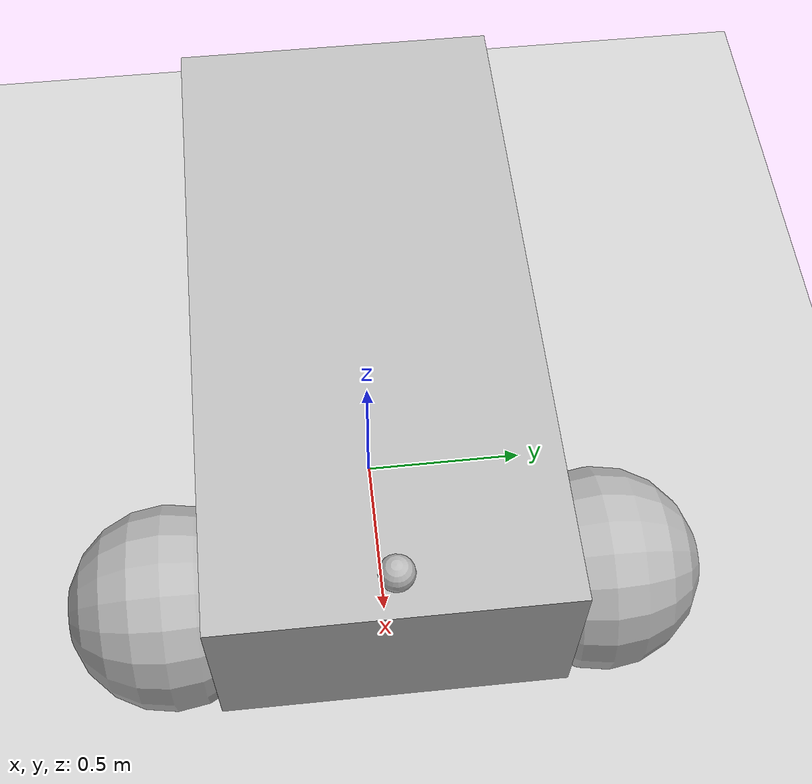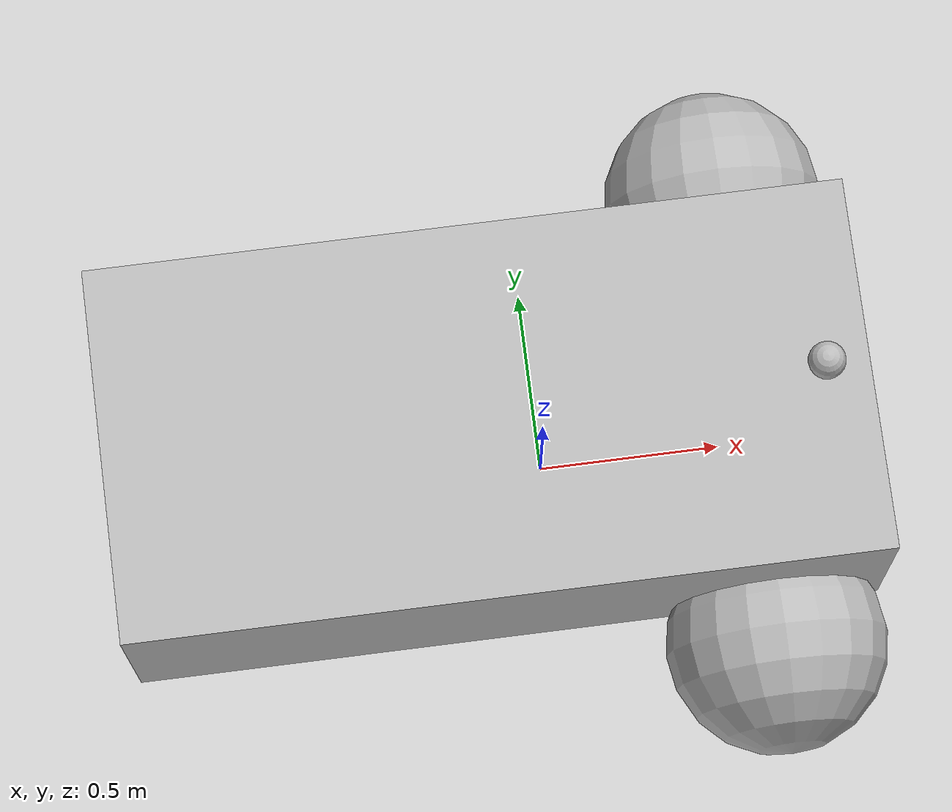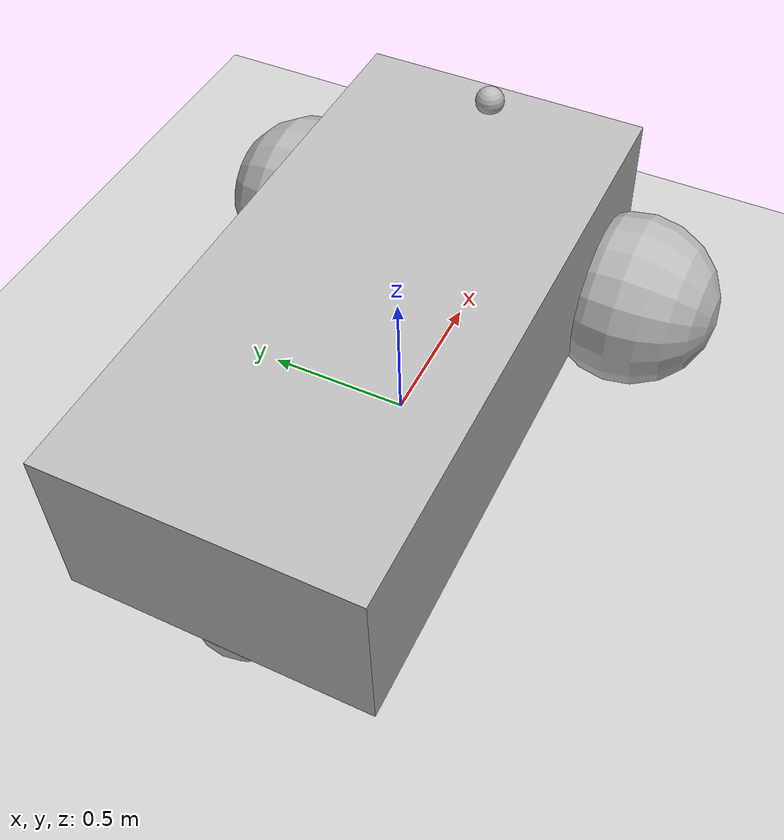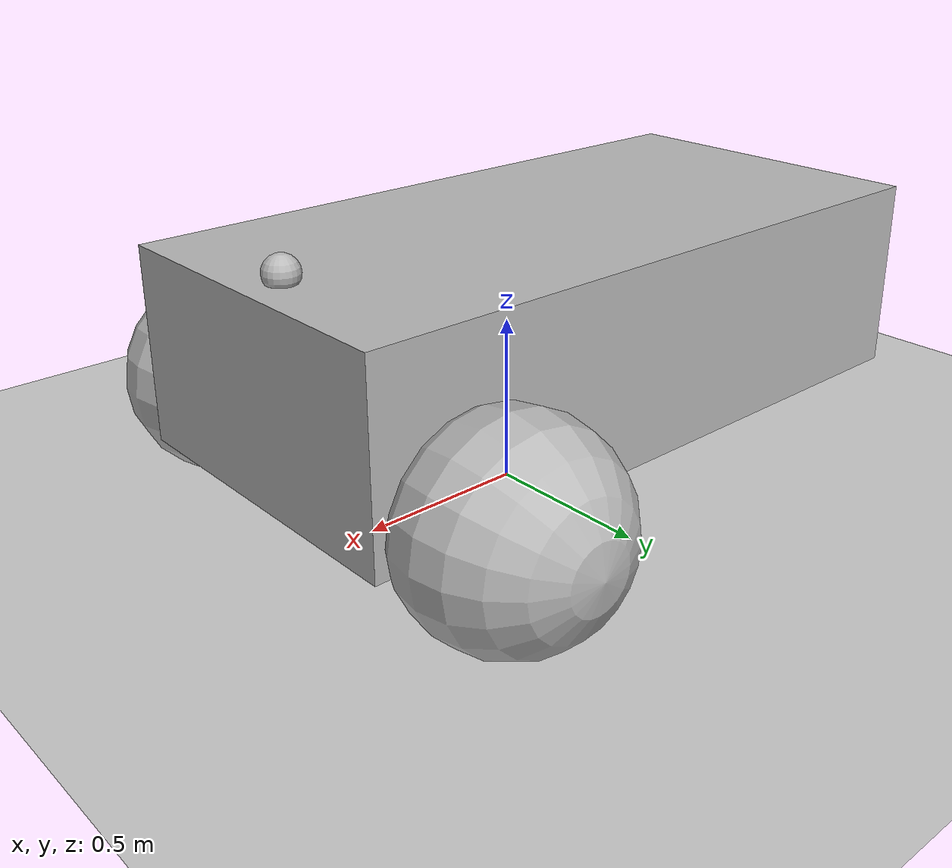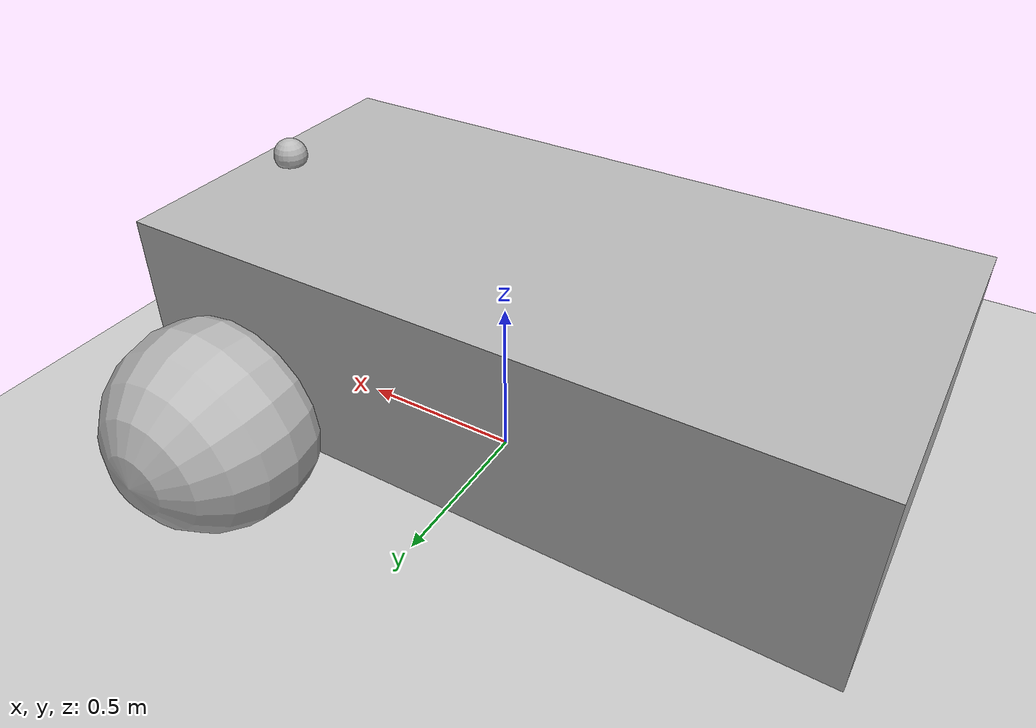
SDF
<?xml version='1.0'?>
    <sdf version='1.4'>
    <world name="default">

    <include>
      <uri>model://ground_plane</uri>
    </include>

    <include>
      <uri>model://sun</uri>
    </include>

    <include>
     	<uri>model://Ray_Model</uri>
     <pose>0.74 0.01 0.809 0 0 0</pose>
    </include>

    <joint name ="ray_sensor" type= "fixed">
      <parent>chassis</parent>
      <child>ray_link::link</child>
    </joint>

    <model name='vehicle'>
      <pose>0 0 0.325 0 -0 0</pose>

      <link name='chassis'>
        <pose>-0.151427 -0 0.175 0 -0 0</pose>
        <inertial>
          <mass>1.14395</mass>
          <inertia>
            <ixx>0.126164</ixx>
            <ixy>0</ixy>
            <ixz>0</ixz>
            <iyy>0.416519</iyy>
            <iyz>0</iyz>
            <izz>0.481014</izz>
          </inertia>
        </inertial>
        <visual name='visual'>
          <geometry>
            <box>
              <size>2.01142 1 0.568726</size>
            </box>
          </geometry>
        </visual>
        <collision name='collision'>
          <geometry>
            <box>
              <size>2.01142 1 0.568726</size>
            </box>
          </geometry>
        </collision>
      </link>

      <link name='left_wheel'>
        <pose>0.554283 0.625029 -0.025 -1.5707 0 0</pose>
        <inertial>
          <mass>2</mass>
          <inertia>
            <ixx>0.145833</ixx>
            <ixy>0</ixy>
            <ixz>0</ixz>
            <iyy>0.145833</iyy>
            <iyz>0</iyz>
            <izz>0.125</izz>
          </inertia>
        </inertial>
        <visual name='visual'>
          <geometry>
            <sphere>
              <radius>0.3</radius>
            </sphere>
          </geometry>
        </visual>
        <collision name='collision'>
          <geometry>
            <sphere>
              <radius>0.3</radius>
            </sphere>
          </geometry>
          <surface>
            <friction>
              <ode>
                <mu>1</mu>
                <mu2>1</mu2>
                <slip1>0</slip1>
                <slip2>0</slip2>
              </ode>
            </friction>
            <contact>
              <ode>
                <soft_cfm>0</soft_cfm>
                <soft_erp>0.2</soft_erp>
                <kp>1e+13</kp>
                <kd>1</kd>
                <max_vel>0.01</max_vel>
                <min_depth>0.01</min_depth>
              </ode>
            </contact>
          </surface>
        </collision>
      </link>

      <link name='right_wheel'>
        <pose>0.554282 -0.625029 -0.025 -1.5707 0 0</pose>
        <inertial>
          <mass>2</mass>
          <inertia>
            <ixx>0.145833</ixx>
            <ixy>0</ixy>
            <ixz>0</ixz>
            <iyy>0.145833</iyy>
            <iyz>0</iyz>
            <izz>0.125</izz>
          </inertia>
        </inertial>
        <visual name='visual'>
          <geometry>
            <sphere>
              <radius>0.3</radius>
            </sphere>
          </geometry>
        </visual>
        <collision name='collision'>
          <geometry>
            <sphere>
              <radius>0.3</radius>
            </sphere>
          </geometry>
          <surface>
            <friction>
              <ode>
                <mu>1</mu>
                <mu2>1</mu2>
                <slip1>0</slip1>
                <slip2>0</slip2>
              </ode>
            </friction>
            <contact>
              <ode>
                <soft_cfm>0</soft_cfm>
                <soft_erp>0.2</soft_erp>
                <kp>1e+13</kp>
                <kd>1</kd>
                <max_vel>0.01</max_vel>
                <min_depth>0.01</min_depth>
              </ode>
            </contact>
          </surface>
        </collision>
      </link>

      <link name='caster'>
        <pose>-0.957138 -0 -0.125 0 -0 0</pose>
        <inertial>
          <mass>1</mass>
          <inertia>
            <ixx>0.1</ixx>
            <ixy>0</ixy>
            <ixz>0</ixz>
            <iyy>0.1</iyy>
            <iyz>0</iyz>
            <izz>0.1</izz>
          </inertia>
        </inertial>
        <visual name='visual'>
          <geometry>
            <sphere>
              <radius>0.2</radius>
            </sphere>
          </geometry>
        </visual>
        <collision name='collision'>
          <geometry>
            <sphere>
              <radius>0.2</radius>
            </sphere>
          </geometry>
        </collision>
      </link>

      <joint name='left_wheel_hinge' type='revolute'>
        <parent>chassis</parent>
        <child>left_wheel</child>
        <axis>
          <xyz>0 1 0</xyz>
          <limit>
            <lower>-1.79769e+308</lower>
            <upper>1.79769e+308</upper>
          </limit>
        </axis>
      </joint>

      <joint name='right_wheel_hinge' type='revolute'>
        <parent>chassis</parent>
        <child>right_wheel</child>
        <axis>
          <xyz>0 1 0</xyz>
          <limit>
            <lower>-1.79769e+308</lower>
            <upper>1.79769e+308</upper>
          </limit>
        </axis>
      </joint>

      <joint name='caster_wheel' type='ball'>
        <parent>chassis</parent>
        <child>caster</child>
      </joint>

          <plugin name="pc2" filename="libgazebo_ros_ray_sensor.so">
            <ros>
              <namespace>/ray</namespace>
              <remapping>~/out:=pointcloud2</remapping>
            </ros>
            <output_type>sensor_msgs/PointCloud2</output_type>
          </plugin>
          <plugin name="pc" filename="libgazebo_ros_ray_sensor.so">
            <ros>
              <namespace>/ray</namespace>
              <remapping>~/out:=pointcloud</remapping>
            </ros>
            <output_type>sensor_msgs/PointCloud</output_type>
          </plugin>
          <plugin name="ls" filename="libgazebo_ros_ray_sensor.so">
            <ros>
              <namespace>/ray</namespace>
              <remapping>~/out:=laserscan</remapping>
            </ros>
            <output_type>sensor_msgs/LaserScan</output_type>
          </plugin>
          <plugin name="range" filename="libgazebo_ros_ray_sensor.so">
            <ros>
              <namespace>/ray</namespace>
              <remapping>~/out:=range</remapping>
            </ros>
            <output_type>sensor_msgs/Range</output_type>
          </plugin>

      <plugin name='diff_drive' filename='libgazebo_ros_diff_drive.so'>

<!-- isimleri degistirme, kodu yzarken buradan yapiyorduk -->
        <ros>
          <namespace>/demo</namespace>
          <remapping>cmd_vel:=cmd_demo</remapping>
          <remapping>odom:=odom_demo</remapping>
        </ros>

        <!-- wheels -->
        <left_joint>left_wheel_hinge</left_joint>
        <right_joint>right_wheel_hinge</right_joint>

        <!-- kinematics -->
        <wheel_separation>1.25</wheel_separation>
        <wheel_diameter>0.6</wheel_diameter>

        <!-- limits -->
        <max_wheel_torque>20</max_wheel_torque>
        <max_wheel_acceleration>1.0</max_wheel_acceleration>

        <!-- output -->
        <publish_odom>true</publish_odom>
        <publish_odom_tf>true</publish_odom_tf>
        <publish_wheel_tf>true</publish_wheel_tf>

        <odometry_frame>odom_demo</odometry_frame>
        <robot_base_frame>chassis</robot_base_frame>

 </plugin>

      </model>

   </world>
 </sdf>

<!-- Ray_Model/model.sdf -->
<sdf version="1.6">

    <model name="ray_sensor_box">
      <pose>0.0 0.0 0.0 0.0 0.0 0.0</pose>
      <link name="ray_link">
        <visual name="visual_box">
          <geometry>
            <box>
              <size>0.05 0.05 0.05</size>
            </box>
          </geometry>
        </visual>
        <collision name="collision_box">
          <geometry>
            <box>
              <size>0.05 0.05 0.05</size>
            </box>
          </geometry>
          <laser_retro>100.0</laser_retro>
        </collision>
        <sensor name="sensor_ray" type="ray">
          <pose>0.0 0.0 0.0 0.0 0.0 0.0</pose>
          <ray>
            <scan>
              <horizontal>
                <samples>300</samples>
                <min_angle>-0.5236</min_angle>
                <max_angle>0.5236</max_angle>
              </horizontal>
              <vertical>
                <samples>100</samples>
                <min_angle>-0.5236</min_angle>
                <max_angle>0.5236</max_angle>
              </vertical>
            </scan>
            <range>
              <min>0.05</min>
              <max>50.0</max>
            </range>
          </ray>
          <always_on>true</always_on>
          <update_rate>3.0</update_rate>
          <!-- Instance of ray plugin for each output type -->
          <plugin name="pc2" filename="libgazebo_ros_ray_sensor.so">
            <ros>
              <namespace>/ray</namespace>
              <remapping>~/out:=pointcloud2</remapping>
            </ros>
            <output_type>sensor_msgs/PointCloud2</output_type>
          </plugin>
          <plugin name="pc" filename="libgazebo_ros_ray_sensor.so">
            <ros>
              <namespace>/ray</namespace>
              <remapping>~/out:=pointcloud</remapping>
            </ros>
            <output_type>sensor_msgs/PointCloud</output_type>
          </plugin>
          <plugin name="ls" filename="libgazebo_ros_ray_sensor.so">
            <ros>
              <namespace>/ray</namespace>
              <remapping>~/out:=laserscan</remapping>
            </ros>
            <output_type>sensor_msgs/LaserScan</output_type>
          </plugin>
          <plugin name="range" filename="libgazebo_ros_ray_sensor.so">
            <ros>
              <namespace>/ray</namespace>
              <remapping>~/out:=range</remapping>
            </ros>
            <output_type>sensor_msgs/Range</output_type>
          </plugin>
        </sensor>
      </link>
    </model>
    <model name="sphere">
      <pose>1.0 0.0 0.0 0.0 0.0</pose>
      <link name="base_link">
        <visual name="visual">
          <geometry>
            <sphere>
              <radius>0.05</radius>
            </sphere>
          </geometry>
        </visual>
        <collision name="collision">
          <geometry>
            <sphere>
              <radius>0.05</radius>
            </sphere>
          </geometry>
          <laser_retro>80.0</laser_retro>
        </collision>
      </link>
    </model>
    <model name="sphere2">
      <pose>5.0 0.9 0.0 0.0 0.0</pose>
      <link name="base_link">
        <visual name="visual">
          <geometry>
            <sphere>
              <radius>0.05</radius>
            </sphere>
          </geometry>
        </visual>
        <collision name="collision">
          <geometry>
            <sphere>
              <radius>0.05</radius>
            </sphere>
          </geometry>
          <laser_retro>80.0</laser_retro>
        </collision>
      </link>
    </model>
    <model name="sphere3">
      <pose>5.0 -1.2 0.0 0.0 0.0</pose>
      <link name="base_link">
        <visual name="visual">
          <geometry>
            <sphere>
              <radius>0.05</radius>
            </sphere>
          </geometry>
        </visual>
        <collision name="collision">
          <geometry>
            <sphere>
              <radius>0.05</radius>
            </sphere>
          </geometry>
          <laser_retro>80.0</laser_retro>
        </collision>
      </link>
    </model>
    <model name="sphere4">
      <pose>3.0 -1.5 1.0 0.0 0.0</pose>
      <link name="base_link">
        <visual name="visual">
          <geometry>
            <sphere>
              <radius>0.05</radius>
            </sphere>
          </geometry>
        </visual>
        <collision name="collision">
          <geometry>
            <sphere>
              <radius>0.05</radius>
            </sphere>
          </geometry>
          <laser_retro>80.0</laser_retro>
        </collision>
      </link>
    </model>
    <model name="sphere5">
      <pose>3.0 1.3 -0.8 0.0 0.0</pose>
      <link name="base_link">
        <visual name="visual">
          <geometry>
            <sphere>
              <radius>0.05</radius>
            </sphere>
          </geometry>
        </visual>
        <collision name="collision">
          <geometry>
            <sphere>
              <radius>0.05</radius>
            </sphere>
          </geometry>
          <laser_retro>80.0</laser_retro>
        </collision>
      </link>
    </model>

</sdf>
